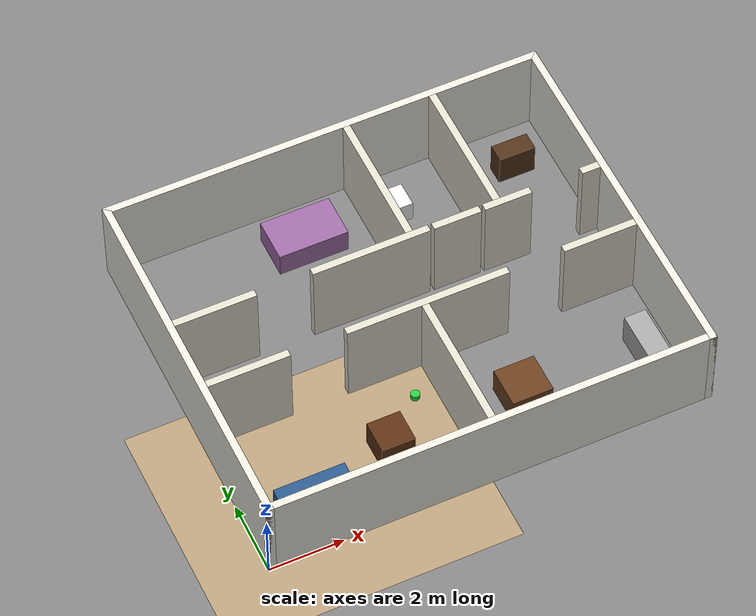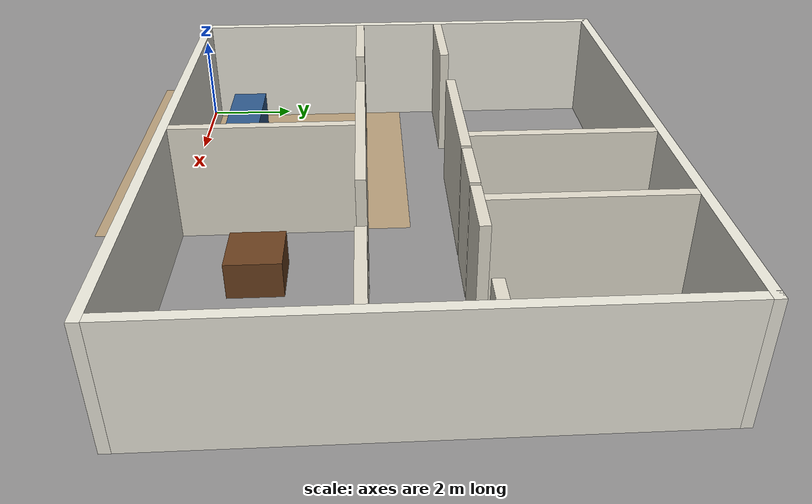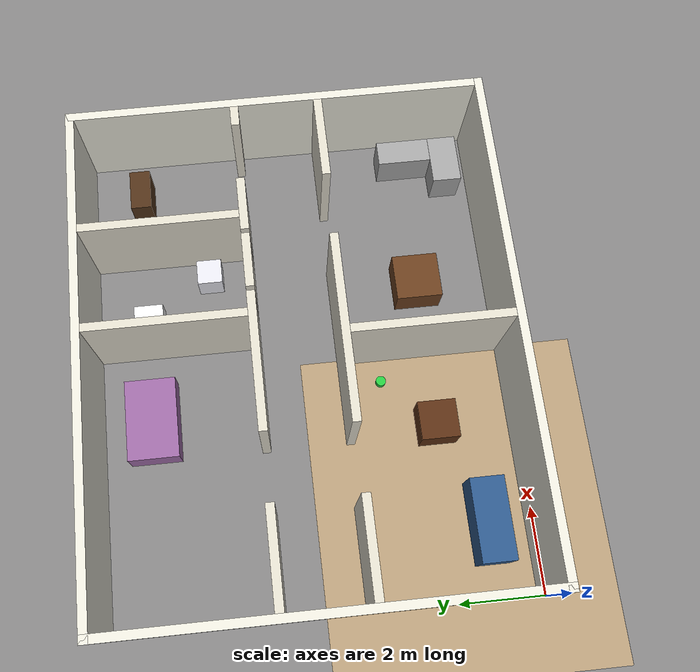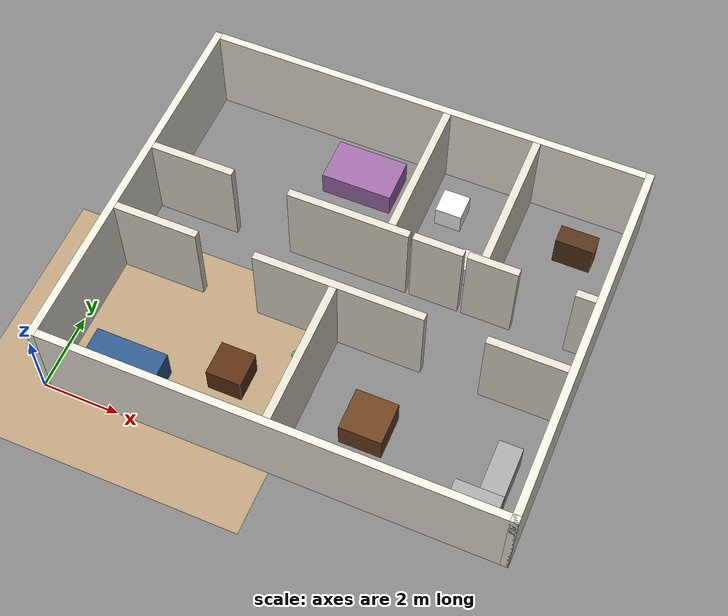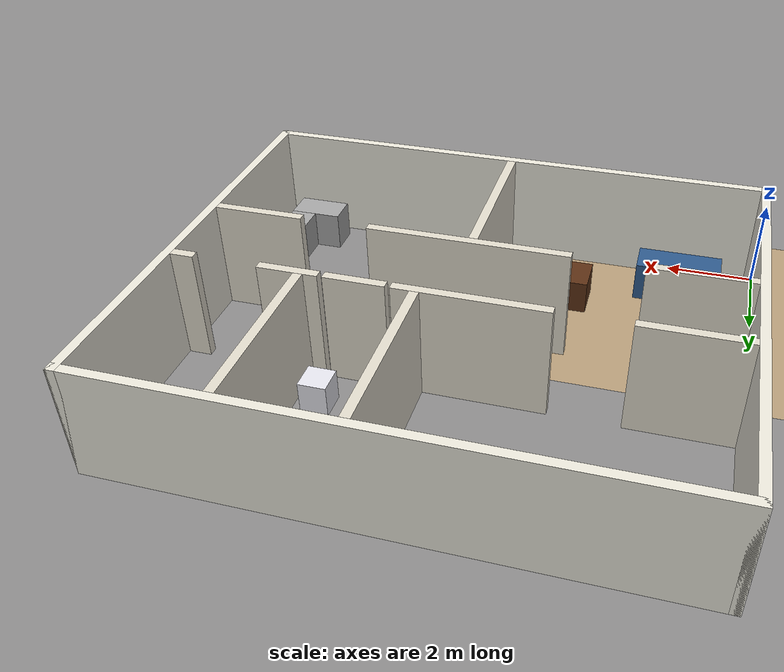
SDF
<?xml version="1.0"?>
<!-- house_v1: local primitive-only single-floor residence. No Fuel or remote URI. -->
<sdf version="1.7">
  <world name="house_v1">
    <physics type="ode"><max_step_size>0.003</max_step_size><real_time_factor>1.0</real_time_factor></physics>
    <plugin name="gz::sim::systems::Physics" filename="gz-sim-physics-system"/>
    <plugin name="gz::sim::systems::UserCommands" filename="gz-sim-user-commands-system"/>
    <plugin name="gz::sim::systems::SceneBroadcaster" filename="gz-sim-scene-broadcaster-system"/>
    <plugin name="gz::sim::systems::Contact" filename="gz-sim-contact-system"/>
    <scene><ambient>0.75 0.75 0.75 1</ambient><background>0.15 0.18 0.22 1</background><shadows>false</shadows></scene>
    <model name="house_floor"><static>true</static><pose>0 0 0 0 0 0</pose><link name="link"><collision name="collision"><geometry><plane><normal>0 0 1</normal><size>1 1</size></plane></geometry></collision><visual name="visual"><geometry><plane><normal>0 0 1</normal><size>12 10</size></plane></geometry><material><diffuse>0.72 0.62 0.48 1</diffuse></material></visual></link></model>

    <!-- Exterior envelope: 12 m x 10 m. Interior door openings are 1.3–1.5 m wide. -->
    <model name="wall_south"><static>true</static><pose>6 0.1 1.25 0 0 0</pose><link name="link"><collision name="c"><geometry><box><size>12 0.2 2.5</size></box></geometry></collision><visual name="v"><geometry><box><size>12 0.2 2.5</size></box></geometry><material><diffuse>0.92 0.91 0.86 1</diffuse></material></visual></link></model>
    <model name="wall_north"><static>true</static><pose>6 9.9 1.25 0 0 0</pose><link name="link"><collision name="c"><geometry><box><size>12 0.2 2.5</size></box></geometry></collision><visual name="v"><geometry><box><size>12 0.2 2.5</size></box></geometry><material><diffuse>0.92 0.91 0.86 1</diffuse></material></visual></link></model>
    <model name="wall_west"><static>true</static><pose>0.1 5 1.25 0 0 0</pose><link name="link"><collision name="c"><geometry><box><size>0.2 10 2.5</size></box></geometry></collision><visual name="v"><geometry><box><size>0.2 10 2.5</size></box></geometry><material><diffuse>0.92 0.91 0.86 1</diffuse></material></visual></link></model>
    <model name="wall_east"><static>true</static><pose>11.9 5 1.25 0 0 0</pose><link name="link"><collision name="c"><geometry><box><size>0.2 10 2.5</size></box></geometry></collision><visual name="v"><geometry><box><size>0.2 10 2.5</size></box></geometry><material><diffuse>0.92 0.91 0.86 1</diffuse></material></visual></link></model>

    <!-- Lower rooms / hallway walls; openings lead to living room and kitchen. -->
    <model name="living_door_wall_left"><static>true</static><pose>1.3 4 1.25 0 0 0</pose><link name="link"><collision name="c"><geometry><box><size>2.2 0.2 2.5</size></box></geometry></collision><visual name="v"><geometry><box><size>2.2 0.2 2.5</size></box></geometry><material><diffuse>0.88 0.86 0.8 1</diffuse></material></visual></link></model>
    <model name="central_lower_wall"><static>true</static><pose>6.1 4 1.25 0 0 0</pose><link name="link"><collision name="c"><geometry><box><size>4.4 0.2 2.5</size></box></geometry></collision><visual name="v"><geometry><box><size>4.4 0.2 2.5</size></box></geometry><material><diffuse>0.88 0.86 0.8 1</diffuse></material></visual></link></model>
    <model name="kitchen_door_wall_right"><static>true</static><pose>10.8 4 1.25 0 0 0</pose><link name="link"><collision name="c"><geometry><box><size>2 0.2 2.5</size></box></geometry></collision><visual name="v"><geometry><box><size>2 0.2 2.5</size></box></geometry><material><diffuse>0.88 0.86 0.8 1</diffuse></material></visual></link></model>
    <model name="living_kitchen_divider"><static>true</static><pose>6 2.05 1.25 0 0 0</pose><link name="link"><collision name="c"><geometry><box><size>0.2 3.7 2.5</size></box></geometry></collision><visual name="v"><geometry><box><size>0.2 3.7 2.5</size></box></geometry><material><diffuse>0.88 0.86 0.8 1</diffuse></material></visual></link></model>

    <!-- Upper rooms / hallway walls; openings lead to bedroom, bathroom and entrance. -->
    <model name="bedroom_door_wall_left"><static>true</static><pose>1.3 6 1.25 0 0 0</pose><link name="link"><collision name="c"><geometry><box><size>2.2 0.2 2.5</size></box></geometry></collision><visual name="v"><geometry><box><size>2.2 0.2 2.5</size></box></geometry><material><diffuse>0.88 0.86 0.8 1</diffuse></material></visual></link></model>
    <model name="upper_middle_wall"><static>true</static><pose>5.5 6 1.25 0 0 0</pose><link name="link"><collision name="c"><geometry><box><size>3.2 0.2 2.5</size></box></geometry></collision><visual name="v"><geometry><box><size>3.2 0.2 2.5</size></box></geometry><material><diffuse>0.88 0.86 0.8 1</diffuse></material></visual></link></model>
    <model name="bathroom_door_wall"><static>true</static><pose>7.85 6 1.25 0 0 0</pose><link name="link"><collision name="c"><geometry><box><size>1.3 0.2 2.5</size></box></geometry></collision><visual name="v"><geometry><box><size>1.3 0.2 2.5</size></box></geometry><material><diffuse>0.88 0.86 0.8 1</diffuse></material></visual></link></model>
    <model name="bathroom_entrance_wall"><static>true</static><pose>9.25 6 1.25 0 0 0</pose><link name="link"><collision name="c"><geometry><box><size>1.3 0.2 2.5</size></box></geometry></collision><visual name="v"><geometry><box><size>1.3 0.2 2.5</size></box></geometry><material><diffuse>0.88 0.86 0.8 1</diffuse></material></visual></link></model>
    <model name="upper_right_wall"><static>true</static><pose>11.55 6 1.25 0 0 0</pose><link name="link"><collision name="c"><geometry><box><size>0.5 0.2 2.5</size></box></geometry></collision><visual name="v"><geometry><box><size>0.5 0.2 2.5</size></box></geometry><material><diffuse>0.88 0.86 0.8 1</diffuse></material></visual></link></model>
    <model name="bedroom_bath_divider"><static>true</static><pose>6.6 7.95 1.25 0 0 0</pose><link name="link"><collision name="c"><geometry><box><size>0.2 3.7 2.5</size></box></geometry></collision><visual name="v"><geometry><box><size>0.2 3.7 2.5</size></box></geometry><material><diffuse>0.88 0.86 0.8 1</diffuse></material></visual></link></model>
    <model name="bath_entrance_divider"><static>true</static><pose>9 7.95 1.25 0 0 0</pose><link name="link"><collision name="c"><geometry><box><size>0.2 3.7 2.5</size></box></geometry></collision><visual name="v"><geometry><box><size>0.2 3.7 2.5</size></box></geometry><material><diffuse>0.88 0.86 0.8 1</diffuse></material></visual></link></model>

    <!-- Local primitive furniture, all static collision geometry. -->
    <model name="living_room_sofa"><static>true</static><pose>1.75 1.1 0.45 0 0 0</pose><link name="link"><collision name="c"><geometry><box><size>1.9 0.8 0.9</size></box></geometry></collision><visual name="v"><geometry><box><size>1.9 0.8 0.9</size></box></geometry><material><diffuse>0.18 0.35 0.55 1</diffuse></material></visual></link></model>
    <model name="living_room_table"><static>true</static><pose>4.15 1.95 0.38 0 0 0</pose><link name="link"><collision name="c"><geometry><box><size>0.9 0.9 0.76</size></box></geometry></collision><visual name="v"><geometry><box><size>0.9 0.9 0.76</size></box></geometry><material><diffuse>0.36 0.19 0.08 1</diffuse></material></visual></link></model>
    <model name="charging_dock_marker"><static>true</static><pose>5.35 3.1 0.08 0 0 0</pose><link name="link"><visual name="v"><geometry><cylinder><radius>0.12</radius><length>0.16</length></cylinder></geometry><material><diffuse>0.15 0.8 0.25 1</diffuse><emissive>0.05 0.3 0.05 1</emissive></material></visual></link></model>
    <model name="kitchen_counter_south"><static>true</static><pose>10.8 0.85 0.45 0 0 0</pose><link name="link"><collision name="c"><geometry><box><size>1.2 0.7 0.9</size></box></geometry></collision><visual name="v"><geometry><box><size>1.2 0.7 0.9</size></box></geometry><material><diffuse>0.65 0.65 0.65 1</diffuse></material></visual></link></model>
    <model name="kitchen_counter_east"><static>true</static><pose>11.1 1.85 0.45 0 0 0</pose><link name="link"><collision name="c"><geometry><box><size>0.6 1.3 0.9</size></box></geometry></collision><visual name="v"><geometry><box><size>0.6 1.3 0.9</size></box></geometry><material><diffuse>0.65 0.65 0.65 1</diffuse></material></visual></link></model>
    <model name="kitchen_dining_table"><static>true</static><pose>7.75 1.95 0.38 0 0 0</pose><link name="link"><collision name="c"><geometry><box><size>1.1 1.1 0.76</size></box></geometry></collision><visual name="v"><geometry><box><size>1.1 1.1 0.76</size></box></geometry><material><diffuse>0.42 0.25 0.12 1</diffuse></material></visual></link></model>
    <model name="bedroom_bed"><static>true</static><pose>4.85 8.6 0.35 0 0 0</pose><link name="link"><collision name="c"><geometry><box><size>1.9 1.2 0.7</size></box></geometry></collision><visual name="v"><geometry><box><size>1.9 1.2 0.7</size></box></geometry><material><diffuse>0.62 0.42 0.65 1</diffuse></material></visual></link></model>
    <model name="bathroom_toilet"><static>true</static><pose>7.35 8.55 0.3 0 0 0</pose><link name="link"><collision name="c"><geometry><box><size>0.7 0.7 0.6</size></box></geometry></collision><visual name="v"><geometry><box><size>0.7 0.7 0.6</size></box></geometry><material><diffuse>0.96 0.96 0.96 1</diffuse></material></visual></link></model>
    <model name="bathroom_sink"><static>true</static><pose>8.4 7 0.35 0 0 0</pose><link name="link"><collision name="c"><geometry><box><size>0.6 0.6 0.7</size></box></geometry></collision><visual name="v"><geometry><box><size>0.6 0.6 0.7</size></box></geometry><material><diffuse>0.9 0.9 0.93 1</diffuse></material></visual></link></model>
    <model name="entrance_shoe_cabinet"><static>true</static><pose>10.7 8.55 0.45 0 0 0</pose><link name="link"><collision name="c"><geometry><box><size>1.0 0.5 0.9</size></box></geometry></collision><visual name="v"><geometry><box><size>1.0 0.5 0.9</size></box></geometry><material><diffuse>0.32 0.2 0.1 1</diffuse></material></visual></link></model>
  </world>
</sdf>
